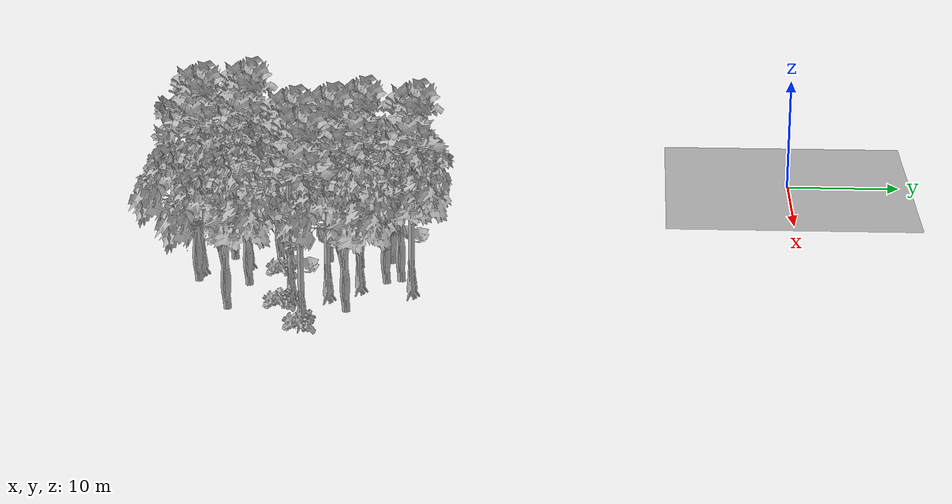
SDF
<sdf version="1.7">
 <world name="default">
  <model name="ground_plane">
   <static>1</static>
   <link name="link">
    <collision name="collision">
     <geometry><plane><normal>0 0 1</normal><size>100 100</size></plane></geometry>
     <surface><contact><ode><min_depth>0.01</min_depth><max_vel>0</max_vel></ode></contact></surface>
    </collision>
    <visual name="grass">
     <cast_shadows>0</cast_shadows>
     <geometry>
      <mesh>
       <scale>0.41000000000000003 0.41000000000000003 0.1</scale>
       <uri>file://grass_plane/meshes/grass_plane.dae</uri>
      </mesh>
     </geometry>
    </visual>
   </link>
  </model>
  <model name="Tree 45">
   <static>1</static>
   <pose>24.41247554256917 -33.765874432687795 0 1.57079 -0 0</pose>
   <link name="link">
    <collision name="collision">
     <geometry><mesh><scale>5 5 5</scale><uri>model://tree_2/meshes/tree_2.obj</uri></mesh></geometry>
    </collision>
    <visual name="visual">
     <geometry><mesh><scale>5 5 5</scale><uri>model://tree_2/meshes/tree_2.obj</uri></mesh></geometry>
    </visual>
   </link>
  </model>
  <model name="Tree 82">
   <static>1</static>
   <pose>30.420307878156322 -36.29897966868231 0 1.57079 -0 0</pose>
   <link name="link">
    <collision name="collision">
     <geometry><mesh><scale>5 5 5</scale><uri>model://tree_2/meshes/tree_2.obj</uri></mesh></geometry>
    </collision>
    <visual name="visual">
     <geometry><mesh><scale>5 5 5</scale><uri>model://tree_2/meshes/tree_2.obj</uri></mesh></geometry>
    </visual>
   </link>
  </model>
  <model name="Tree 107">
   <static>1</static>
   <pose>30.2132124538156 -45.69833720967379 0 1.57079 -0 0</pose>
   <link name="link">
    <collision name="collision">
     <geometry><mesh><scale>5 5 5</scale><uri>model://tree_2/meshes/tree_2.obj</uri></mesh></geometry>
    </collision>
    <visual name="visual">
     <geometry><mesh><scale>5 5 5</scale><uri>model://tree_2/meshes/tree_2.obj</uri></mesh></geometry>
    </visual>
   </link>
  </model>
  <model name="Tree 122">
   <static>1</static>
   <pose>19.438190148864933 -43.14749817736164 0 1.57079 -0 0</pose>
   <link name="link">
    <collision name="collision">
     <geometry><mesh><scale>5 5 5</scale><uri>model://tree_2/meshes/tree_2.obj</uri></mesh></geometry>
    </collision>
    <visual name="visual">
     <geometry><mesh><scale>5 5 5</scale><uri>model://tree_2/meshes/tree_2.obj</uri></mesh></geometry>
    </visual>
   </link>
  </model>
  <model name="Tree 133">
   <static>1</static>
   <pose>21.071428440487523 -36.29514026054124 0 1.57079 -0 0</pose>
   <link name="link">
    <collision name="collision">
     <geometry><mesh><scale>5 5 5</scale><uri>model://tree_2/meshes/tree_2.obj</uri></mesh></geometry>
    </collision>
    <visual name="visual">
     <geometry><mesh><scale>5 5 5</scale><uri>model://tree_2/meshes/tree_2.obj</uri></mesh></geometry>
    </visual>
   </link>
  </model>
  <model name="Tree 135">
   <static>1</static>
   <pose>19.86955863285192 -39.00320339449084 0 1.57079 -0 0</pose>
   <link name="link">
    <collision name="collision">
     <geometry><mesh><scale>5 5 5</scale><uri>model://tree_2/meshes/tree_2.obj</uri></mesh></geometry>
    </collision>
    <visual name="visual">
     <geometry><mesh><scale>5 5 5</scale><uri>model://tree_2/meshes/tree_2.obj</uri></mesh></geometry>
    </visual>
   </link>
  </model>
  <model name="Tree 139">
   <static>1</static>
   <pose>27.87261427236224 -40.946688696869245 0 1.57079 -0 0</pose>
   <link name="link">
    <collision name="collision">
     <geometry><mesh><scale>5 5 5</scale><uri>model://tree_9/meshes/tree_9.obj</uri></mesh></geometry>
    </collision>
    <visual name="visual">
     <geometry><mesh><scale>5 5 5</scale><uri>model://tree_9/meshes/tree_9.obj</uri></mesh></geometry>
    </visual>
   </link>
  </model>
  <model name="Tree 179">
   <static>1</static>
   <pose>24.502888609328878 -49.035535075246315 0 1.57079 -0 0</pose>
   <link name="link">
    <collision name="collision">
     <geometry><mesh><scale>5 5 5</scale><uri>model://tree_2/meshes/tree_2.obj</uri></mesh></geometry>
    </collision>
    <visual name="visual">
     <geometry><mesh><scale>5 5 5</scale><uri>model://tree_2/meshes/tree_2.obj</uri></mesh></geometry>
    </visual>
   </link>
  </model>
  <model name="Tree 190">
   <static>1</static>
   <pose>20.330897565158992 -45.617040829227804 0 1.57079 -0 0</pose>
   <link name="link">
    <collision name="collision">
     <geometry><mesh><scale>5 5 5</scale><uri>model://tree_9/meshes/tree_9.obj</uri></mesh></geometry>
    </collision>
    <visual name="visual">
     <geometry><mesh><scale>5 5 5</scale><uri>model://tree_9/meshes/tree_9.obj</uri></mesh></geometry>
    </visual>
   </link>
  </model>
  <model name="Tree 199">
   <static>1</static>
   <pose>20.337459972135704 -42.22111751211462 0 1.57079 -0 0</pose>
   <link name="link">
    <collision name="collision">
     <geometry><mesh><scale>5 5 5</scale><uri>model://tree_2/meshes/tree_2.obj</uri></mesh></geometry>
    </collision>
    <visual name="visual">
     <geometry><mesh><scale>5 5 5</scale><uri>model://tree_2/meshes/tree_2.obj</uri></mesh></geometry>
    </visual>
   </link>
  </model>
  <model name="Tree 206">
   <static>1</static>
   <pose>19.572251876248103 -46.933770976007125 0 1.57079 -0 0</pose>
   <link name="link">
    <collision name="collision">
     <geometry><mesh><scale>5 5 5</scale><uri>model://tree_2/meshes/tree_2.obj</uri></mesh></geometry>
    </collision>
    <visual name="visual">
     <geometry><mesh><scale>5 5 5</scale><uri>model://tree_2/meshes/tree_2.obj</uri></mesh></geometry>
    </visual>
   </link>
  </model>
  <model name="Tree 214">
   <static>1</static>
   <pose>32.688483675479205 -39.402663424623775 0 1.57079 -0 0</pose>
   <link name="link">
    <collision name="collision">
     <geometry><mesh><scale>5 5 5</scale><uri>model://tree_9/meshes/tree_9.obj</uri></mesh></geometry>
    </collision>
    <visual name="visual">
     <geometry><mesh><scale>5 5 5</scale><uri>model://tree_9/meshes/tree_9.obj</uri></mesh></geometry>
    </visual>
   </link>
  </model>
  <model name="Tree 223">
   <static>1</static>
   <pose>23.928885232206298 -32.60799172686441 0 1.57079 -0 0</pose>
   <link name="link">
    <collision name="collision">
     <geometry><mesh><scale>5 5 5</scale><uri>model://tree_2/meshes/tree_2.obj</uri></mesh></geometry>
    </collision>
    <visual name="visual">
     <geometry><mesh><scale>5 5 5</scale><uri>model://tree_2/meshes/tree_2.obj</uri></mesh></geometry>
    </visual>
   </link>
  </model>
  <model name="Tree 250">
   <static>1</static>
   <pose>26.984869916912345 -38.146095033551234 0 1.57079 -0 0</pose>
   <link name="link">
    <collision name="collision">
     <geometry><mesh><scale>5 5 5</scale><uri>model://tree_9/meshes/tree_9.obj</uri></mesh></geometry>
    </collision>
    <visual name="visual">
     <geometry><mesh><scale>5 5 5</scale><uri>model://tree_9/meshes/tree_9.obj</uri></mesh></geometry>
    </visual>
   </link>
  </model>
  <model name="Tree 282">
   <static>1</static>
   <pose>21.718848073860016 -49.23426400967568 0 1.57079 -0 0</pose>
   <link name="link">
    <collision name="collision">
     <geometry><mesh><scale>5 5 5</scale><uri>model://tree_9/meshes/tree_9.obj</uri></mesh></geometry>
    </collision>
    <visual name="visual">
     <geometry><mesh><scale>5 5 5</scale><uri>model://tree_9/meshes/tree_9.obj</uri></mesh></geometry>
    </visual>
   </link>
  </model>
  <model name="Tree 331">
   <static>1</static>
   <pose>25.835324758668776 -31.543473926986476 0 1.57079 -0 0</pose>
   <link name="link">
    <collision name="collision">
     <geometry><mesh><scale>5 5 5</scale><uri>model://tree_9/meshes/tree_9.obj</uri></mesh></geometry>
    </collision>
    <visual name="visual">
     <geometry><mesh><scale>5 5 5</scale><uri>model://tree_9/meshes/tree_9.obj</uri></mesh></geometry>
    </visual>
   </link>
  </model>
  <model name="Tree 439">
   <static>1</static>
   <pose>19.975671994676432 -33.79794159955685 0 1.57079 -0 0</pose>
   <link name="link">
    <collision name="collision">
     <geometry><mesh><scale>5 5 5</scale><uri>model://tree_2/meshes/tree_2.obj</uri></mesh></geometry>
    </collision>
    <visual name="visual">
     <geometry><mesh><scale>5 5 5</scale><uri>model://tree_2/meshes/tree_2.obj</uri></mesh></geometry>
    </visual>
   </link>
  </model>
  <model name="Tree 455">
   <static>1</static>
   <pose>25.208841823636376 -44.80591636917758 0 1.57079 -0 0</pose>
   <link name="link">
    <collision name="collision">
     <geometry><mesh><scale>5 5 5</scale><uri>model://tree_2/meshes/tree_2.obj</uri></mesh></geometry>
    </collision>
    <visual name="visual">
     <geometry><mesh><scale>5 5 5</scale><uri>model://tree_2/meshes/tree_2.obj</uri></mesh></geometry>
    </visual>
   </link>
  </model>
  <model name="Tree 489">
   <static>1</static>
   <pose>25.11890024763946 -35.81444689451057 0 1.57079 -0 0</pose>
   <link name="link">
    <collision name="collision">
     <geometry><mesh><scale>5 5 5</scale><uri>model://tree_9/meshes/tree_9.obj</uri></mesh></geometry>
    </collision>
    <visual name="visual">
     <geometry><mesh><scale>5 5 5</scale><uri>model://tree_9/meshes/tree_9.obj</uri></mesh></geometry>
    </visual>
   </link>
  </model>
  <model name="Bush 19">
   <static>1</static>
   <pose>32.947667110995795 -39.59853261811557 0 1.57079 -0 0</pose>
   <link name="link">
    <collision name="collision">
     <geometry><mesh><scale>2 2 2</scale><uri>model://bush_2/meshes/bush_2.obj</uri></mesh></geometry>
    </collision>
    <visual name="visual">
     <geometry><mesh><scale>5 5 5</scale><uri>model://bush_2/meshes/bush_2.obj</uri></mesh></geometry>
    </visual>
   </link>
  </model>
  <model name="Bush 68">
   <static>1</static>
   <pose>21.75290071526551 -42.68010404216032 0 1.57079 -0 0</pose>
   <link name="link">
    <collision name="collision">
     <geometry><mesh><scale>2 2 2</scale><uri>model://bush_2/meshes/bush_2.obj</uri></mesh></geometry>
    </collision>
    <visual name="visual">
     <geometry><mesh><scale>5 5 5</scale><uri>model://bush_2/meshes/bush_2.obj</uri></mesh></geometry>
    </visual>
   </link>
  </model>
  <model name="Bush 81">
   <static>1</static>
   <pose>28.60495674069837 -41.825503952381005 0 1.57079 -0 0</pose>
   <link name="link">
    <collision name="collision">
     <geometry><mesh><scale>2 2 2</scale><uri>model://bush_2/meshes/bush_2.obj</uri></mesh></geometry>
    </collision>
    <visual name="visual">
     <geometry><mesh><scale>5 5 5</scale><uri>model://bush_2/meshes/bush_2.obj</uri></mesh></geometry>
    </visual>
   </link>
  </model>
 </world>
</sdf>
